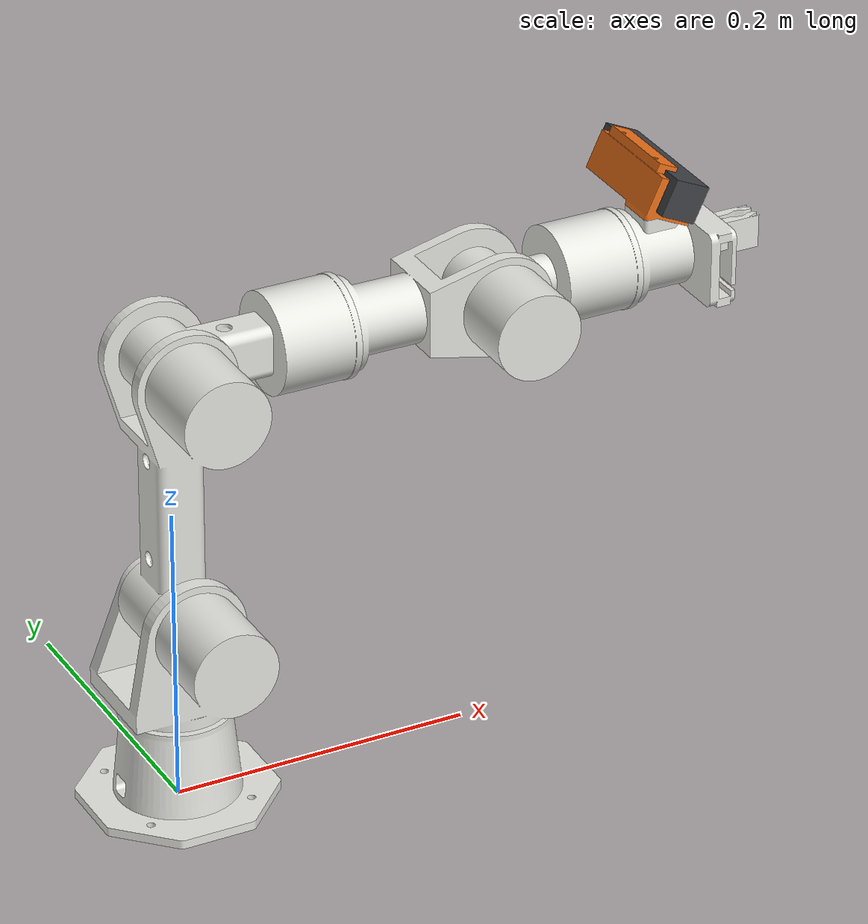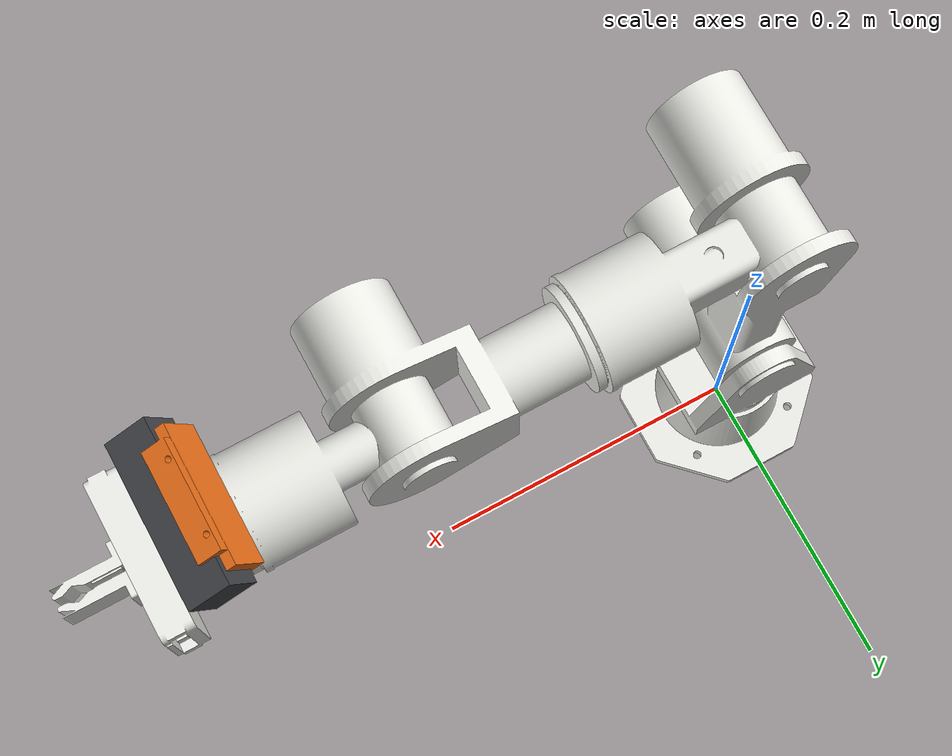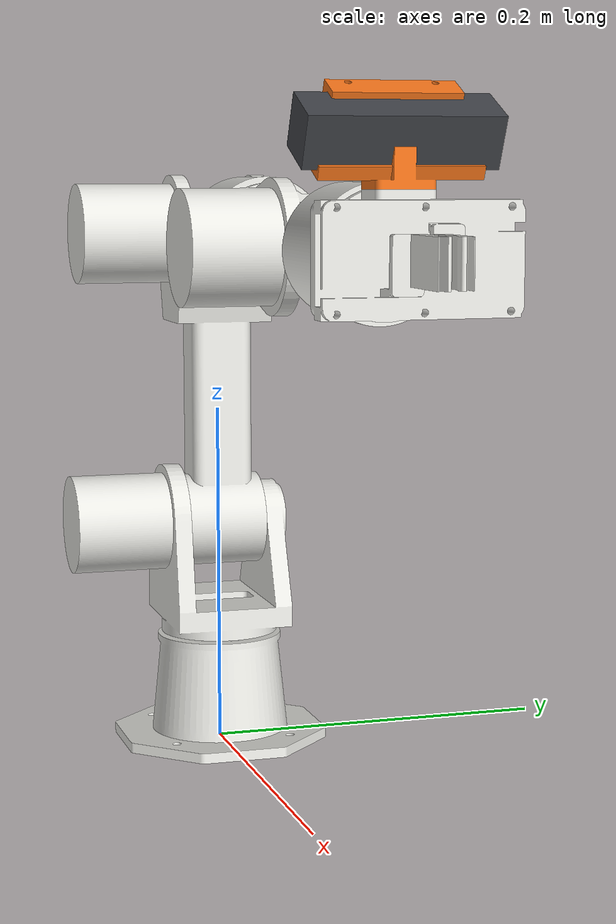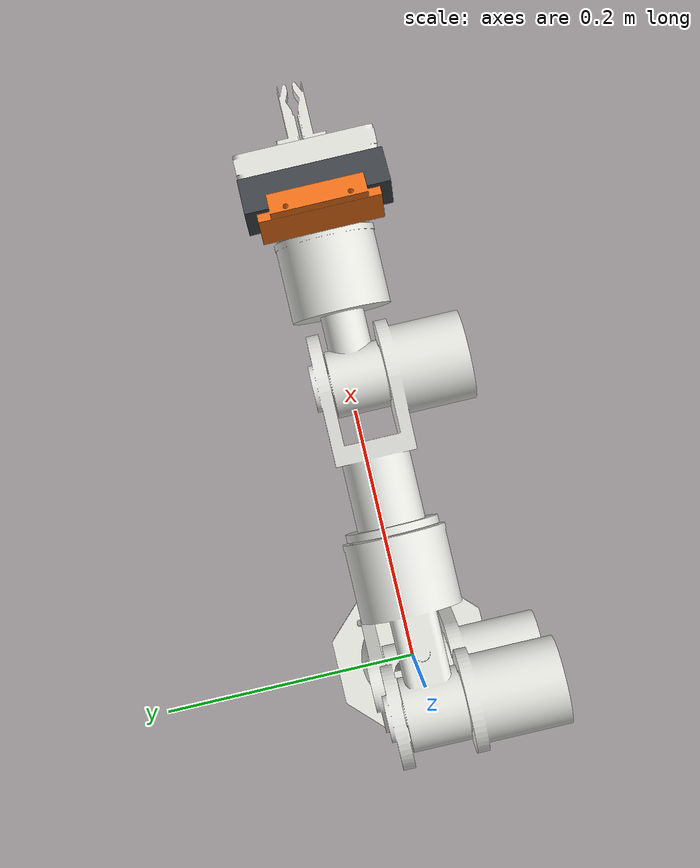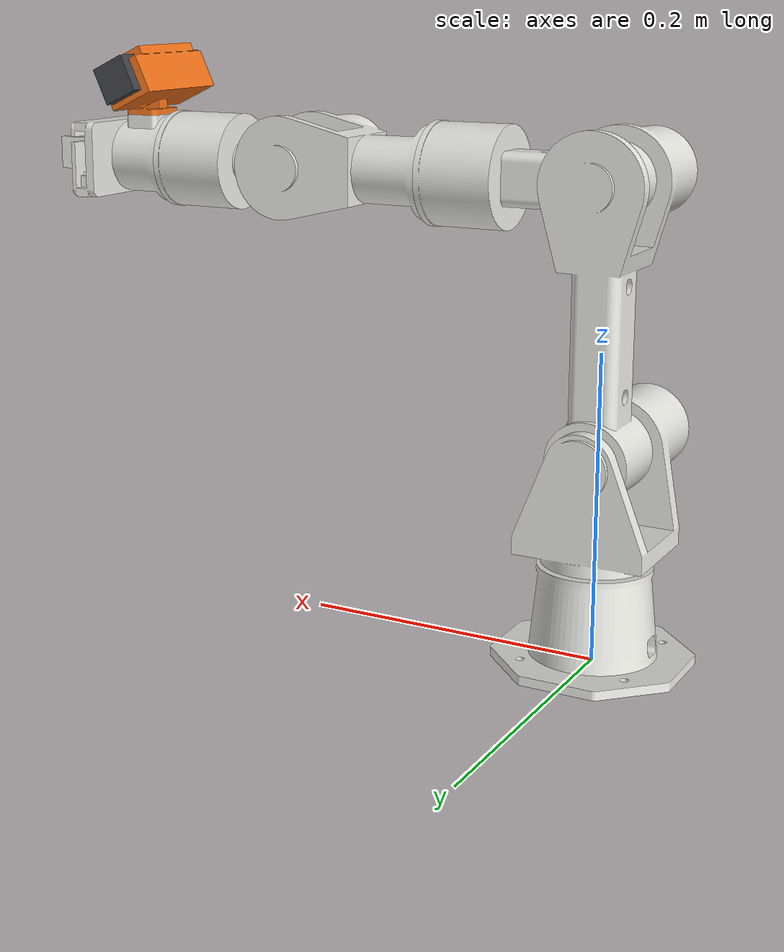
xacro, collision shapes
<?xml version="1.0"?>
<robot name="arm" xmlns:xacro="http://www.ros.org/wiki/xacro">

  <xacro:arg name="prefix" default=""/>
  <xacro:arg name="stage" default="full"/>
  <xacro:arg name="test_mass" default="0.0"/>
  <xacro:arg name="camera" default="d435"/>
  <xacro:arg name="sim_mode" default="none"/>
  <xacro:arg name="controllers_file" default=""/>
  <xacro:arg name="gazebo_overrides_file" default=""/>
  <!-- sim_mode:=real 전용 -->
  <xacro:arg name="hw_config" default=""/>
  <xacro:arg name="transport" default="socketcan"/>
  <xacro:arg name="channel" default="can0"/>
  <xacro:arg name="active_joints" default="all"/>
  <xacro:property name="arm_hw" value="${xacro.load_yaml('$(arg hw_config)') if '$(arg sim_mode)' == 'real' else None}"/>

  <xacro:include filename="$(find arm_description)/urdf/arm_macro.xacro"/>
  <xacro:include filename="$(find arm_description)/urdf/arm.ros2_control.xacro"/>

  <link name="world"/>

  <xacro:arm prefix="$(arg prefix)" parent="world" stage="$(arg stage)" test_mass="$(arg test_mass)" camera="$(arg camera)"
             finger_mimic="${'$(arg sim_mode)' == 'none'}">
    <origin xyz="0 0 0" rpy="0 0 0"/>
  </xacro:arm>

  <xacro:if value="${'$(arg sim_mode)' != 'none'}">
    <xacro:arm_ros2_control prefix="$(arg prefix)" sim_mode="$(arg sim_mode)" stage="$(arg stage)"
                            transport="$(arg transport)" channel="$(arg channel)" active_joints="$(arg active_joints)"/>
  </xacro:if>
  <xacro:if value="${'$(arg sim_mode)' == 'gazebo'}">
    <xacro:arm_gazebo controllers_file="$(arg controllers_file)" gazebo_overrides_file="$(arg gazebo_overrides_file)"/>
  </xacro:if>

</robot>

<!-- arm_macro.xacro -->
<robot xmlns:xacro="http://www.ros.org/wiki/xacro">

  <xacro:include filename="$(find arm_description)/urdf/generated/arm_properties.xacro"/>

  <xacro:property name="PI" value="3.14159265358979"/>
  <xacro:property name="mesh_dir" value="package://arm_description/meshes"/>

  <xacro:property name="eff_4340" value="9.0"/>
  <xacro:property name="vel_4340" value="${36*2*PI/60}"/>
  <xacro:property name="eff_4310" value="3.0"/>
  <xacro:property name="vel_4310" value="${120*2*PI/60}"/>
  <xacro:property name="eff_3510" value="0.18"/>
  <xacro:property name="vel_3510" value="${500*2*PI/60}"/>

  <!-- 링크 1개 = 프린팅 본체(흰색) + 액센트(주황) [+ 액추에이터 외형(회색)] -->
  <xacro:macro name="arm_link" params="prefix name motor:=true">
    <link name="${prefix}${name}">
      <visual>
        <origin xyz="0 0 0" rpy="0 0 0"/>
        <geometry><mesh filename="${mesh_dir}/${name}_body.stl" scale="0.001 0.001 0.001"/></geometry>
        <material name="${prefix}arm_body"/>
      </visual>
      <visual>
        <origin xyz="0 0 0" rpy="0 0 0"/>
        <geometry><mesh filename="${mesh_dir}/${name}_accent.stl" scale="0.001 0.001 0.001"/></geometry>
        <material name="${prefix}arm_accent"/>
      </visual>
      <xacro:if value="${motor}">
        <visual>
          <origin xyz="0 0 0" rpy="0 0 0"/>
          <geometry><mesh filename="${mesh_dir}/${name}_motor.stl" scale="0.001 0.001 0.001"/></geometry>
          <material name="${prefix}arm_motor"/>
        </visual>
      </xacro:if>
      <collision>
        <origin xyz="0 0 0" rpy="0 0 0"/>
        <geometry><mesh filename="${mesh_dir}/${name}_collision.stl" scale="0.001 0.001 0.001"/></geometry>
      </collision>
      <xacro:call macro="inertial_${name}"/>
    </link>
  </xacro:macro>

  <xacro:macro name="rev_joint" params="prefix name parent child xyz axis lower upper eff vel">
    <joint name="${prefix}${name}" type="revolute">
      <parent link="${prefix}${parent}"/>
      <child link="${prefix}${child}"/>
      <origin xyz="${xyz}" rpy="0 0 0"/>
      <axis xyz="${axis}"/>
      <limit lower="${lower}" upper="${upper}" effort="${eff}" velocity="${vel}"/>
      <dynamics damping="0.1" friction="0.0"/>
    </joint>
  </xacro:macro>

  <xacro:macro name="arm" params="prefix:='' parent *origin stage:='full' test_mass:=0.0 camera:='d435' finger_mimic:=true">

    <material name="${prefix}arm_body"><color rgba="0.90 0.90 0.88 1.0"/></material>
    <material name="${prefix}arm_accent"><color rgba="0.95 0.45 0.10 1.0"/></material>
    <material name="${prefix}arm_motor"><color rgba="0.25 0.26 0.28 1.0"/></material>

    <!-- 장착부 -->
    <joint name="${prefix}mount_joint" type="fixed">
      <parent link="${parent}"/>
      <child link="${prefix}base_link"/>
      <xacro:insert_block name="origin"/>
    </joint>

    <xacro:arm_link prefix="${prefix}" name="base_link"/>
    <xacro:arm_link prefix="${prefix}" name="link1"/>
    <xacro:arm_link prefix="${prefix}" name="link2"/>
    <xacro:arm_link prefix="${prefix}" name="link3"/>
    <xacro:if value="${stage == 'full'}">
    <xacro:arm_link prefix="${prefix}" name="link4"/>
    <xacro:arm_link prefix="${prefix}" name="link5"/>
    <xacro:arm_link prefix="${prefix}" name="link6"/>
    <xacro:arm_link prefix="${prefix}" name="finger_left" motor="false"/>
    <xacro:arm_link prefix="${prefix}" name="finger_right" motor="false"/>
    </xacro:if>

    <!-- 홈 자세(전 관절 0): 상완은 수직, 전완~그리퍼는 +x 방향 수평 (ㄱ자) -->
    <xacro:rev_joint prefix="${prefix}" name="joint1" parent="base_link" child="link1"
                     xyz="0 0 ${arm_base_h}" axis="0 0 1" lower="${-170*PI/180}" upper="${170*PI/180}" eff="${eff_4340}" vel="${vel_4340}"/>
    <xacro:rev_joint prefix="${prefix}" name="joint2" parent="link1" child="link2"
                     xyz="0 0 ${arm_j2_z}" axis="0 1 0" lower="${-110*PI/180}" upper="${110*PI/180}" eff="${eff_4340}" vel="${vel_4340}"/>
    <!-- +방향 = 전완이 아래로 접힘. +38°에서 전완 J4 캔이 상완 빔에 닿음 → 여유를 두고 +32°로 제한 -->
    <xacro:rev_joint prefix="${prefix}" name="joint3" parent="link2" child="link3"
                     xyz="0 0 ${arm_L2}" axis="0 1 0" lower="${-150*PI/180}" upper="${32*PI/180}" eff="${eff_4340}" vel="${vel_4340}"/>
    <xacro:if value="${stage == 'full'}">
    <xacro:rev_joint prefix="${prefix}" name="joint4" parent="link3" child="link4"
                     xyz="${arm_L3} 0 0" axis="1 0 0" lower="${-170*PI/180}" upper="${170*PI/180}" eff="${eff_4310}" vel="${vel_4310}"/>
    <xacro:rev_joint prefix="${prefix}" name="joint5" parent="link4" child="link5"
                     xyz="${arm_L4} 0 0" axis="0 1 0" lower="${-110*PI/180}" upper="${110*PI/180}" eff="${eff_4310}" vel="${vel_4310}"/>
    <xacro:rev_joint prefix="${prefix}" name="joint6" parent="link5" child="link6"
                     xyz="${arm_L5} 0 0" axis="1 0 0" lower="${-170*PI/180}" upper="${170*PI/180}" eff="${eff_4310}" vel="${vel_4310}"/>

    <!-- 그리퍼: 랙·피니언(피치원 반경 10 mm)으로 두 핑거가 대칭 이동. 왼쪽만 독립, 오른쪽은 mimic
         effort: H3510 정격 0.18 N·m / 0.01 m = 18 N 에서 여유를 둔 값 -->
    <joint name="${prefix}finger_left_joint" type="prismatic">
      <parent link="${prefix}link6"/>
      <child link="${prefix}finger_left"/>
      <origin xyz="${arm_grip_len} 0 0" rpy="0 0 0"/>
      <axis xyz="0 1 0"/>
      <limit lower="0.0" upper="${arm_finger_stroke}" effort="15.0" velocity="0.1"/>
    </joint>
    <joint name="${prefix}finger_right_joint" type="prismatic">
      <parent link="${prefix}link6"/>
      <child link="${prefix}finger_right"/>
      <origin xyz="${arm_grip_len} 0 0" rpy="0 0 0"/>
      <axis xyz="0 -1 0"/>
      <limit lower="0.0" upper="${arm_finger_stroke}" effort="15.0" velocity="0.1"/>
      <!-- RViz 표시 모드(슬라이더)에서만 mimic 사용. ros2_control 모드에서는 컨트롤러가 두 핑거에 같은 값을 보냄 -->
      <xacro:if value="${finger_mimic}">
        <mimic joint="${prefix}finger_left_joint" multiplier="1.0" offset="0.0"/>
      </xacro:if>
    </joint>

    <!-- 툴 프레임: tool0 = 손목 플랜지, tcp = 핑거 끝에서 10 mm 안쪽 -->
    <link name="${prefix}tool0"/>
    <joint name="${prefix}tool0_joint" type="fixed">
      <parent link="${prefix}link6"/>
      <child link="${prefix}tool0"/>
      <origin xyz="0 0 0" rpy="0 0 0"/>
    </joint>
    <link name="${prefix}tcp"/>
    <joint name="${prefix}tcp_joint" type="fixed">
      <parent link="${prefix}link6"/>
      <child link="${prefix}tcp"/>
      <origin xyz="${arm_grip_len + arm_finger_len - 0.010} 0 0" rpy="0 0 0"/>
    </joint>

    <!-- 손목 카메라: RealSense D435 + 프린팅 마운트 (link6과 함께 J6로 회전) -->
    <xacro:if value="${camera == 'd435'}">
      <link name="${prefix}camera_mount">
        <visual>
          <origin xyz="0 0 0" rpy="0 0 0"/>
          <geometry><mesh filename="${mesh_dir}/camera_mount_body.stl" scale="0.001 0.001 0.001"/></geometry>
          <material name="${prefix}arm_accent"/>
        </visual>
        <collision>
          <origin xyz="0 0 0" rpy="0 0 0"/>
          <geometry><mesh filename="${mesh_dir}/camera_mount_body.stl" scale="0.001 0.001 0.001"/></geometry>
        </collision>
        <xacro:call macro="inertial_camera_mount"/>
      </link>
      <joint name="${prefix}camera_mount_joint" type="fixed">
        <parent link="${prefix}link6"/>
        <child link="${prefix}camera_mount"/>
        <origin xyz="0 0 0" rpy="0 0 0"/>
      </joint>

      <!-- camera_link: 카메라 본체 중심, x = 렌즈 방향 (RealSense 드라이버의 camera_link와 같은 이름) -->
      <link name="${prefix}camera_link">
        <visual>
          <origin xyz="0 0 0" rpy="0 0 0"/>
          <geometry><mesh filename="${mesh_dir}/camera_d435_body.stl" scale="0.001 0.001 0.001"/></geometry>
          <material name="${prefix}arm_motor"/>
        </visual>
        <collision>
          <origin xyz="0 0 0" rpy="0 0 0"/>
          <geometry><box size="${arm_cam_d} ${arm_cam_w} ${arm_cam_h}"/></geometry>
        </collision>
        <xacro:call macro="inertial_camera_d435"/>
      </link>
      <joint name="${prefix}camera_joint" type="fixed">
        <parent link="${prefix}camera_mount"/>
        <child link="${prefix}camera_link"/>
        <origin xyz="${arm_cam_x} 0 ${arm_cam_z}" rpy="0 ${arm_cam_pitch} 0"/>
      </joint>

      <!-- 공칭 광학 프레임 (z = 시선 방향, x = 오른쪽, y = 아래). 실제 센서 위치는 드라이버가 내보내는 TF를 사용 -->
      <link name="${prefix}camera_optical_nominal"/>
      <joint name="${prefix}camera_optical_nominal_joint" type="fixed">
        <parent link="${prefix}camera_link"/>
        <child link="${prefix}camera_optical_nominal"/>
        <origin xyz="${arm_cam_d/2} 0 0" rpy="${-PI/2} 0 ${-PI/2}"/>
      </joint>
    </xacro:if>

    </xacro:if>

    <!-- J1~J3 단계: J4 출력면 위치에 시험 추 (40 mm 정육면체로 표시) -->
    <xacro:if value="${stage == 'j1to3' and test_mass > 0.0}">
      <link name="${prefix}test_mass">
        <visual>
          <origin xyz="0.020 0 0" rpy="0 0 0"/>
          <geometry><box size="0.04 0.04 0.04"/></geometry>
          <material name="${prefix}arm_motor"/>
        </visual>
        <inertial>
          <origin xyz="0.020 0 0" rpy="0 0 0"/>
          <mass value="${test_mass}"/>
          <inertia ixx="${test_mass*0.04*0.04/6}" ixy="0" ixz="0" iyy="${test_mass*0.04*0.04/6}" iyz="0" izz="${test_mass*0.04*0.04/6}"/>
        </inertial>
      </link>
      <joint name="${prefix}test_mass_joint" type="fixed">
        <parent link="${prefix}link3"/>
        <child link="${prefix}test_mass"/>
        <origin xyz="${arm_L3} 0 0" rpy="0 0 0"/>
      </joint>
    </xacro:if>

  </xacro:macro>
</robot>

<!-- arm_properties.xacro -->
<!-- AUTO-GENERATED by cad/generate_cad.py : 직접 수정하지 말고 스크립트의 P를 수정 -->
<robot xmlns:xacro="http://www.ros.org/wiki/xacro">
  <xacro:property name="arm_base_h"   value="0.066000"/>
  <xacro:property name="arm_j2_z"     value="0.068000"/>
  <xacro:property name="arm_L2"       value="0.170000"/>
  <xacro:property name="arm_L3"       value="0.115000"/>
  <xacro:property name="arm_L4"       value="0.100000"/>
  <xacro:property name="arm_L5"       value="0.095000"/>
  <xacro:property name="arm_grip_len" value="0.056000"/>
  <xacro:property name="arm_finger_len" value="0.040000"/>
  <xacro:property name="arm_finger_stroke" value="0.020000"/>
  <xacro:property name="arm_cam_x"     value="0.020000"/>
  <xacro:property name="arm_cam_z"     value="0.054000"/>
  <xacro:property name="arm_cam_pitch" value="0.436332"/>
  <xacro:property name="arm_cam_d"     value="0.025000"/>
  <xacro:property name="arm_cam_w"     value="0.090000"/>
  <xacro:property name="arm_cam_h"     value="0.025000"/>

  <!-- 관성: 프린팅 부품 PLA 1240 kg/m^3 x 실효 충진율 0.5 + 액추에이터 사양표 질량(균일 원기둥 가정). 베어링·볼트·배선 미포함 -->
  <xacro:macro name="inertial_base_link">
    <inertial>
      <origin xyz="0.000075 0.000000 0.033439" rpy="0 0 0"/>
      <mass value="0.495271"/>
      <inertia ixx="3.2856e-04" ixy="-6.3992e-13" ixz="6.3457e-07"
               iyy="3.2730e-04" iyz="2.0762e-11" izz="3.1841e-04"/>
    </inertial>
  </xacro:macro>
  <xacro:macro name="inertial_link1">
    <inertial>
      <origin xyz="0.000000 -0.048398 0.059842" rpy="0 0 0"/>
      <mass value="0.475849"/>
      <inertia ixx="7.0211e-04" ixy="-2.7485e-19" ixz="2.1064e-19"
               iyy="3.8307e-04" iyz="1.8967e-04" izz="5.7629e-04"/>
    </inertial>
  </xacro:macro>
  <xacro:macro name="inertial_link2">
    <inertial>
      <origin xyz="0.000007 -0.039974 0.140586" rpy="0 0 0"/>
      <mass value="0.517130"/>
      <inertia ixx="2.4619e-03" ixy="-1.4355e-07" ixz="2.3823e-07"
               iyy="2.1088e-03" iyz="5.8630e-04" izz="5.6179e-04"/>
    </inertial>
  </xacro:macro>
  <xacro:macro name="inertial_link3">
    <inertial>
      <origin xyz="0.078671 -0.000252 -0.000005" rpy="0 0 0"/>
      <mass value="0.391168"/>
      <inertia ixx="1.6714e-04" ixy="-7.7565e-06" ixz="-7.8936e-08"
               iyy="5.1558e-04" iyz="4.8325e-10" izz="5.1711e-04"/>
    </inertial>
  </xacro:macro>
  <xacro:macro name="inertial_link4">
    <inertial>
      <origin xyz="0.087908 -0.035719 -0.000000" rpy="0 0 0"/>
      <mass value="0.402643"/>
      <inertia ixx="3.4851e-04" ixy="1.7391e-04" ixz="-1.1888e-21"
               iyy="4.4696e-04" iyz="2.0219e-20" izz="6.3097e-04"/>
    </inertial>
  </xacro:macro>
  <xacro:macro name="inertial_link5">
    <inertial>
      <origin xyz="0.063112 -0.000216 0.000000" rpy="0 0 0"/>
      <mass value="0.373263"/>
      <inertia ixx="1.5317e-04" ixy="-5.0793e-06" ixz="8.1459e-11"
               iyy="3.1486e-04" iyz="3.1089e-12" izz="3.1642e-04"/>
    </inertial>
  </xacro:macro>
  <xacro:macro name="inertial_link6">
    <inertial>
      <origin xyz="0.026030 -0.000000 0.000367" rpy="0 0 0"/>
      <mass value="0.169739"/>
      <inertia ixx="6.3716e-05" ixy="2.8360e-20" ixz="2.5121e-07"
               iyy="5.8431e-05" iyz="1.9301e-07" izz="6.9326e-05"/>
    </inertial>
  </xacro:macro>
  <xacro:macro name="inertial_finger_left">
    <inertial>
      <origin xyz="0.006852 -0.001280 0.006386" rpy="0 0 0"/>
      <mass value="0.006086"/>
      <inertia ixx="1.6041e-06" ixy="-5.1911e-07" ixz="4.7498e-07"
               iyy="1.6109e-06" iyz="3.4912e-07" izz="2.2896e-06"/>
    </inertial>
  </xacro:macro>
  <xacro:macro name="inertial_finger_right">
    <inertial>
      <origin xyz="0.006852 0.001280 -0.006386" rpy="0 0 0"/>
      <mass value="0.006086"/>
      <inertia ixx="1.6041e-06" ixy="5.1911e-07" ixz="-4.7498e-07"
               iyy="1.6109e-06" iyz="3.4912e-07" izz="2.2896e-06"/>
    </inertial>
  </xacro:macro>
  <xacro:macro name="inertial_camera_mount">
    <inertial>
      <origin xyz="0.011173 0.000000 0.050916" rpy="0 0 0"/>
      <mass value="0.015976"/>
      <inertia ixx="9.3375e-06" ixy="-5.5394e-21" ixz="7.6150e-07"
               iyy="4.0205e-06" iyz="3.8091e-18" izz="7.6286e-06"/>
    </inertial>
  </xacro:macro>
  <xacro:macro name="inertial_camera_d435">
    <inertial>
      <origin xyz="-0.000000 -0.000000 0.000000" rpy="0 0 0"/>
      <mass value="0.075000"/>
      <inertia ixx="5.4448e-05" ixy="1.2302e-23" ixz="1.9043e-23"
               iyy="7.6470e-06" iyz="1.2302e-23" izz="5.4448e-05"/>
    </inertial>
  </xacro:macro>
</robot>
